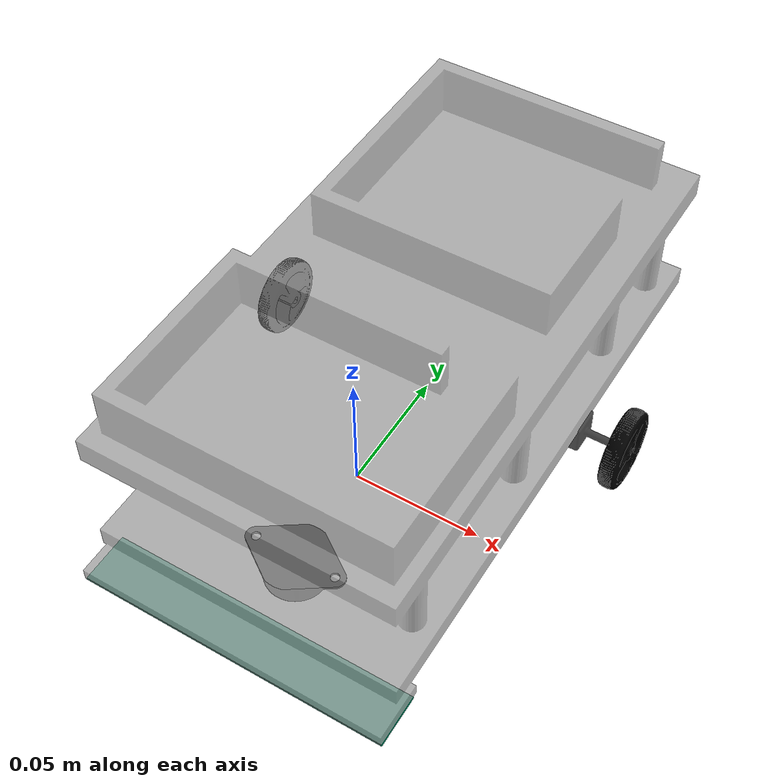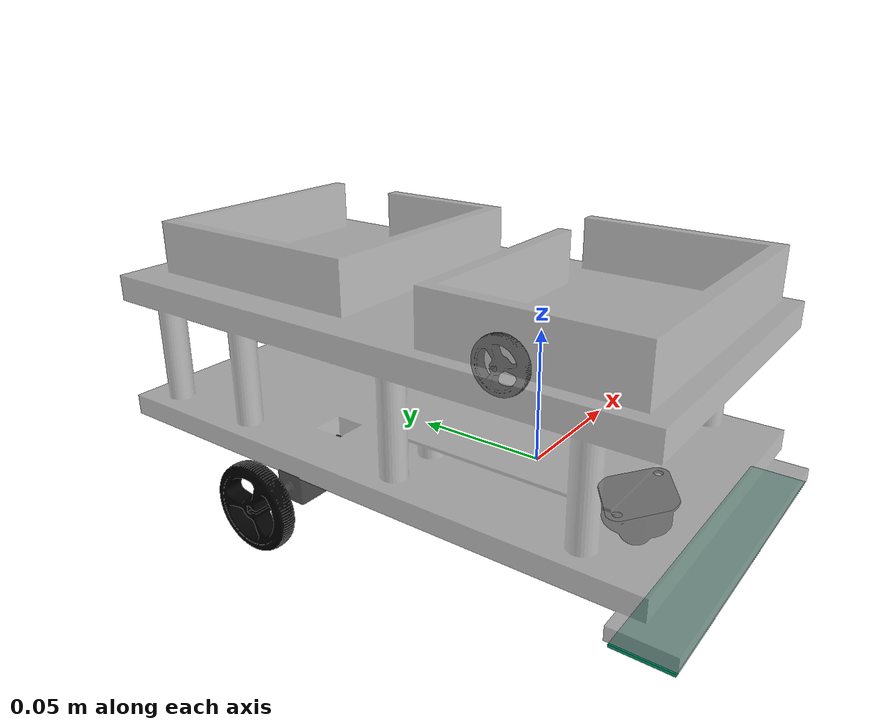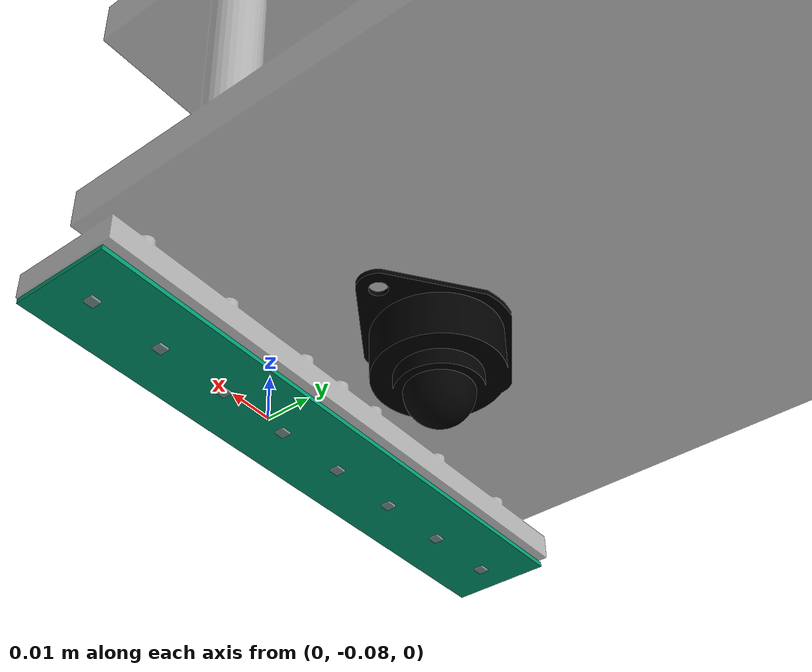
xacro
<?xml version="1.0" encoding="UTF-8"?>
<robot name="linetrace_robot" xmlns:xacro="http://www.ros.org/wiki/xacro">

  <material name="gray">
    <color rgba="0.67 0.67 0.67 0.8"/>
  </material>

  <material name="deep_black">
    <color rgba="0.0 0.0 0.0 1.0"/>
  </material>

  <material name="light_black">
    <color rgba="0.105 0.105 0.105 0.8"/>
  </material>

  <!-- gazebo tags -->
   <gazebo reference="body_ballcaster">
      <mu1 value="0.1" />
      <mu2 value="0.1" />
   </gazebo>

  <gazebo>
    <plugin filename="gz_ros2_control-system" name="gz_ros2_control::GazeboSimROS2ControlPlugin">
      <parameters>$(find robot_desc)/config/wheel_controllers.yaml</parameters>
    </plugin>
  </gazebo>

  <ros2_control name="GazeboSimSystem" type="system">
    <hardware>
      <plugin>gz_ros2_control/GazeboSimSystem</plugin>
    </hardware>
    <joint name="motorRight_wheelRight">
      <command_interface name="velocity"/>
      <state_interface name="position"/>
      <state_interface name="velocity"/>
    </joint>
    <joint name="motorLeft_wheelLeft">
      <command_interface name="velocity"/>
      <state_interface name="position"/>
      <state_interface name="velocity"/>
    </joint>
  </ros2_control>

   <gazebo>
      <plugin filename="gz-sim-joint-state-publisher-system"
              name="gz::sim::systems::JointStatePublisher">
              <joint_name>motorRight_wheelRight</joint_name>
              <joint_name>motorLeft_wheelLeft</joint_name>
      </plugin>
   </gazebo>

  <!-- link tags -->
  <link name="root_link" />

  <link name="body">
    <visual>
      <geometry>
        <mesh filename="package://robot_desc/meshes/body2.stl" scale="1 1 1"/>
      </geometry>
      <origin xyz="0 0 0" rpy="0 0 0"/>
      <material name="gray" />
    </visual>
    <inertial>
      <origin xyz="0.0 0.040453 -0.030739" rpy="0 0 0" />
      <mass value="0.62426" />
      <inertia
        ixx="0.003120" ixy="0.000009029163" ixz="0.000006510861"
        iyy="0.001229" iyz="-0.000070511"
        izz="0.003483" />
    </inertial>
  </link>

  <link name="camera_link">
      <visual>
        <geometry>
          <box size="0.001 0.02 0.122"/>
        </geometry>
        <origin xyz="0 0 0" rpy="0 0 0"/>
      </visual>
      <inertial>
        <origin xyz="0 0 0" rpy="0 0 0"/>
        <mass value="0.0001"/>
      <inertia
          ixx="0.0" ixy="0.0" ixz="0.0"
          iyy="0.0" iyz="0.0"
          izz="0.0" />
      </inertial>
      <collision>
        <geometry>
          <box size="0.001 0.02 0.122"/>
        </geometry>
        <origin xyz="0 0 0" rpy="0 0 0"/>
      </collision>
    </link>

    <xacro:macro name="illuminance_sensor" params="index pos_z">
      <link name="illuminance_sensor_${index}">
        <visual>
          <geometry>
            <box size="0.002 0.002 0.002"/>
          </geometry>
          <origin xyz="0 0 0" rpy="0 0 0"/>
          <material name="gray"/>
        </visual>
        <inertial>
          <origin xyz="0 0 0" rpy="0 0 0"/>
          <mass value="0.0001"/>
          <inertia
              ixx="1.0e-9" ixy="0.0" ixz="0.0"
              iyy="1.0e-9" iyz="0.0"
              izz="1.0e-9" />
        </inertial>
      </link>

      <joint name="camera_illuminance_${index}" type="fixed">
        <parent link="camera_link"/>
        <child link="illuminance_sensor_${index}"/>
        <origin xyz="0 0 ${pos_z}" rpy="0 0 0"/>
      </joint>

      <gazebo reference="illuminance_sensor_${index}">
        <sensor name="camera_${index}" type="camera">
          <camera>
            <horizontal_fov>1.5708</horizontal_fov>
            <image>
              <width>80</width>
              <height>80</height>
              <format>R8G8B8</format>
            </image>
            <clip>
              <near>0.001</near>
              <far>5</far>
            </clip>
            <lens>
              <type>orthographic</type>
            </lens>
            <optical_frame_id>camera_link_${index}</optical_frame_id>
            <camera_info_topic>camera_${index}/camera_info</camera_info_topic>
          </camera>
            <always_on>1</always_on>
            <update_rate>20</update_rate>
            <visualize>false</visualize>
            <topic>camera_${index}/image_raw</topic>
        </sensor>
      </gazebo>
    </xacro:macro>

      <xacro:illuminance_sensor index="1" pos_z="-0.05375"/>
      <xacro:illuminance_sensor index="2" pos_z="-0.03839"/>
      <xacro:illuminance_sensor index="3" pos_z="-0.02304"/>
      <xacro:illuminance_sensor index="4" pos_z="-0.00768"/>
      <xacro:illuminance_sensor index="5" pos_z="0.00768"/>
      <xacro:illuminance_sensor index="6" pos_z="0.02304"/>
      <xacro:illuminance_sensor index="7" pos_z="0.03839"/>
      <xacro:illuminance_sensor index="8" pos_z="0.05375"/>

  <link name="ballcaster">
    <visual>
      <geometry>
        <mesh filename="package://robot_desc/meshes/ballcaster.stl" scale="1 1 1"/>
      </geometry>
      <origin xyz="0 0 0" rpy="0 0 0"/>
      <material name="deep_black"/>
    </visual>
    <inertial>
      <origin xyz="0.0 0.0 6.522e-3" rpy="0 0 0" />
      <mass value="47.104e-3" />
      <inertia
        ixx="2464.439e-9" ixy="0.0" ixz="0.0"
        iyy="2684.693e-9" iyz="0.0"
        izz="3234.311e-9" />
    </inertial>
    <collision>
        <geometry>
          <sphere radius="0.007"/>
        </geometry>
        <origin xyz="0 0 0.01" rpy="0 0 0"/>
    </collision>
  </link>

  <link name="motorRight">
    <visual>
      <geometry>
          <mesh filename="package://robot_desc/meshes/motor.stl" scale="1 1 1"/>
      </geometry>
      <origin xyz="0 0 0" rpy="0 ${pi/2} 0"/>
      <material name="light_black"/>
    </visual>
    <inertial>
      <origin xyz="15.549e-3 0.0 0.0" rpy="0 0 0" />
      <mass value="35.358e-3" />
      <inertia
        ixx="3340.002e-9" ixy="0.0" ixz="0.0"
        iyy="3340.002e-9" iyz="0.0"
        izz="838.727e-9" />
    </inertial>
  </link>

  <link name="motorLeft">
    <visual>
      <geometry>
          <mesh filename="package://robot_desc/meshes/motor.stl" scale="1 1 1"/>
      </geometry>
      <origin xyz="0 0 0" rpy="0 ${pi/2} 0"/>
      <material name="light_black"/>
    </visual>
    <inertial>
      <origin xyz="15.549e-3 0.0 0.0" rpy="0 0 0" />
      <mass value="35.358e-3" />
      <inertia
        ixx="3340.002e-9" ixy="0.0" ixz="0.0"
        iyy="3340.002e-9" iyz="0.0"
        izz="838.727e-9" />
    </inertial>
  </link>

  <link name="wheelRight">
    <visual>
      <geometry>
        <mesh filename="package://robot_desc/meshes/wheel.stl" scale="1 1 1"/>
      </geometry>
      <origin xyz="0 0 0" rpy="0 0 ${pi}"/>
      <material name="deep_black"/>
    </visual>
    <inertial>
      <origin xyz="0.0 0.0 0.0" rpy="0 0 ${pi}" />
      <mass value="3.087e-3" />
      <inertia
        ixx="4.71331e-7" ixy="0.0" ixz="0.0"
        iyy="2.4712e-7" iyz="0.0"
        izz="2.4701e-7" />
    </inertial>
    <collision>
        <geometry>
          <sphere radius="0.016"/>
        </geometry>
        <origin xyz="0.0 0 0.0" rpy="0 0 0"/>
    </collision>
  </link>

  <link name="wheelLeft">
    <visual>
      <geometry>
        <mesh filename="package://robot_desc/meshes/wheel.stl" scale="1 1 1"/>
      </geometry>
      <origin xyz="0 0 0" rpy="0 0 0"/>
      <material name="deep_black"/>
    </visual>
    <inertial>
      <origin xyz="0.0 0.0 0.0" rpy="0 0 0" />
      <mass value="3.087e-3" />
      <inertia
        ixx="4.71331e-7" ixy="0.0" ixz="0.0"
        iyy="2.4712e-7" iyz="0.0"
        izz="2.4701e-7" />
    </inertial>
    <collision>
        <geometry>
          <sphere radius="0.016"/>
        </geometry>
        <origin xyz="0 0 0.0" rpy="0 0 0"/>
    </collision>
  </link>

  <!-- joint tags -->
  <joint name="root_to_body" type="fixed">
    <parent link="root_link"/>
    <child link="body"/>
    <origin xyz="0 0 0" rpy="0 0 0"/>
  </joint>

   <joint name="body_camera" type="fixed">
    <parent link="body"/>
    <child link="camera_link"/>
    <origin xyz="-0.001 -0.07 -0.011" rpy="0 ${pi/2} 0"/>
  </joint>

  <joint name="body_ballcaster" type="fixed">
    <parent link="body"/>
    <child link="ballcaster"/>
    <origin xyz="0 -0.04 0.0" rpy="0 ${pi} 0"/>
  </joint>

  <joint name="body_motorRight" type="fixed">
    <parent link="body"/>
    <child link="motorRight"/>
    <origin xyz="-0.03 0.065 -0.0047" rpy="0 0 ${pi}"/>
  </joint>

  <joint name="motorRight_wheelRight" type="continuous">
    <parent link="motorRight"/>
    <child link="wheelRight"/>
    <origin xyz="0.046 0 0" rpy="0 0 ${pi}"/>
    <axis xyz="1 0 0"/>
  </joint>

  <joint name="body_motorLeft" type="fixed">
    <parent link="body"/>
    <child link="motorLeft"/>
    <origin xyz="0.03 0.065 -0.0047" rpy="0 0 0"/>
  </joint>

  <joint name="motorLeft_wheelLeft" type="continuous">
    <parent link="motorLeft"/>
    <child link="wheelLeft"/>
    <origin xyz="0.046 0 0" rpy="0 0 0"/>
    <axis xyz="1 0 0"/>
  </joint>
</robot>
